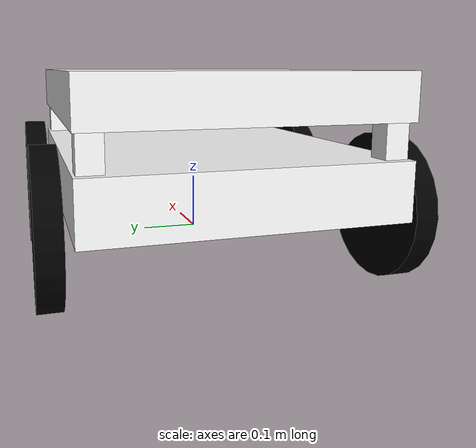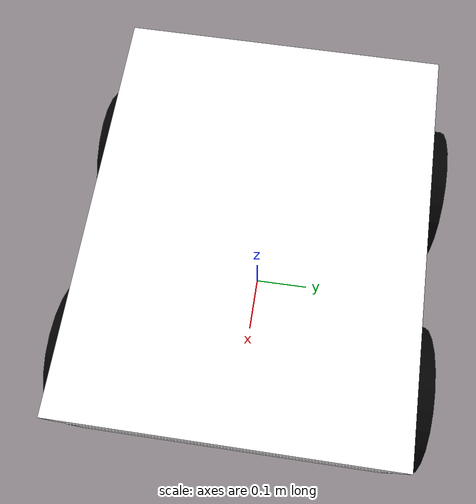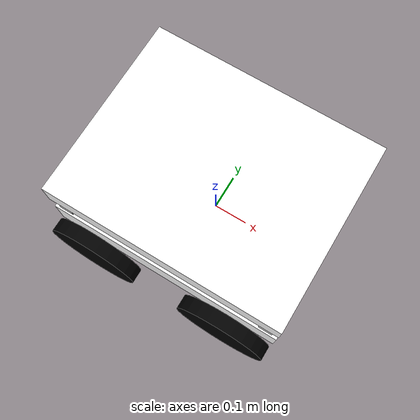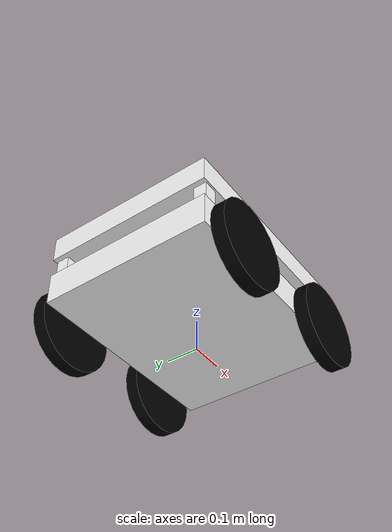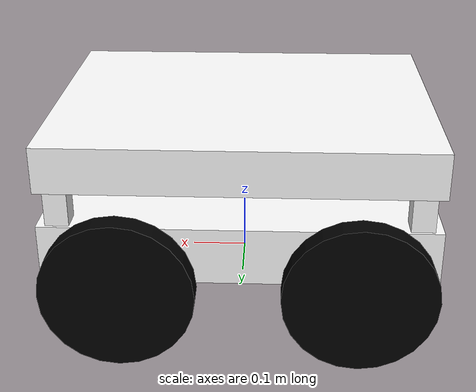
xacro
<?xml version="1.0" ?>
<robot name="jubox" xmlns:xacro="http://wiki.ros.org/xacro">

    <xacro:include filename="head.xacro"/>
<!--base_car-->
    <xacro:property name="base_mass" value="2" />
    <xacro:property name="base_length" value="0.67" />
    <xacro:property name="base_weigth" value="0.53" />
    <xacro:property name="base_heigth" value="0.10" />

    <link name="base_link">
        <visual>
            <origin xyz="0.0 0.0 0.12" rpy="0.0 0.0 0.0"/>
            <geometry>
                <box size="0.67 0.53 0.10"/>
            </geometry>
            <material name="white">
                <color rgba="1 1 1 1"/>
            </material>
        </visual>
    <collision>
        <geometry>
            <box size="0.67 0.53 0.10"/>
        </geometry>
        <origin xyz="0.0 0.0 0.0" rpy="0.0 0.0 0.0"/>
    </collision>
    <xacro:Box_inertial_matrix m="${base_mass}"  l="${base_length}" w="${base_weigth}" h="${base_heigth}" />
    </link>
    <gazebo reference="base_link">
        <material>Gazebo/White</material>
    </gazebo>

<!--wheel-->
    <xacro:property name="wheel_radius" value="0.13" />
    <xacro:property name="wheel_length" value="0.04" />
    <xacro:property name="wheel_mass" value="0.05" />

    <xacro:property name="PI" value="3.1415927" />

    <xacro:macro name="wheel_func" params="wheel_name flag1 flag2">

    <joint name="${wheel_name}_joint" type="continuous">
        <origin xyz="${0.20*flag2} ${0.298*flag1} 0.07" rpy="${PI/2} 0.0 0.0"/>
        <parent link="base_link"/>
        <child link="${wheel_name}_link"/>
        <axis xyz="0 0 1"/>
    </joint>

    <link name="${wheel_name}_link">
        <visual>
            <origin xyz="0.0 0.0 0.0" rpy="0.0 0.0 0.0"/>
            <geometry>
                <cylinder radius="${wheel_radius}" length="${wheel_length}"/>
            </geometry>
            <material name="black">
                <color rgba="0 0 0 1"/>
            </material>
        </visual>
    <collision>
        <geometry>
            <cylinder radius="${wheel_radius}" length="${wheel_length}"/>
        </geometry>
        <origin xyz="0.0 0.0 0.0" rpy="0.0 0.0 0.0"/>
    </collision>
    <xacro:cylinder_inertial_matrix m="${wheel_mass}" r="${wheel_radius}" h="${wheel_length}" />
    </link>
    <gazebo reference="${wheel_name}_link">
        <material>Gazebo/Black</material>
    </gazebo>

</xacro:macro>

    <xacro:wheel_func wheel_name="left_back" flag1="1" flag2="-1"/>
    <xacro:wheel_func wheel_name="right_back" flag1="-1" flag2="-1"/>
    <xacro:wheel_func wheel_name="left_front" flag1="1" flag2="1"/>
    <xacro:wheel_func wheel_name="right_front" flag1="-1" flag2="1"/>

<!--support-->

    <xacro:property name="support_l" value="0.04" />
    <xacro:property name="support_h" value="0.11" />
    <xacro:property name="support_w" value="0.04" />
    <xacro:property name="support_mass" value="0.02" />
    <xacro:property name="PI" value="3.1415927" />

<xacro:macro name="support_func" params="support_name flag1 flag2">

    <joint name="${support_name}_joint" type="fixed">
        <origin xyz="${0.3*flag1} ${0.24*flag2} 0.22" rpy="${PI/2} 0.0 0.0"/>
        <parent link="base_link"/>
        <child link="${support_name}_link"/>
    </joint>

    <link name="${support_name}_link">
        <visual>
            <origin xyz="0.0 0.0 0.0" rpy="0.0 0.0 0.0"/>
            <geometry>
                <box size="${support_l} ${support_h} ${support_w}"/>
            </geometry>
            <material name="white">
                <color rgba="1 1 1 0"/>
            </material>
        </visual>
    <collision>
        <geometry>
            <box size="${support_l} ${support_h} ${support_w}"/>
        </geometry>
        <origin xyz="0.0 0.0 0.0" rpy="0.0 0.0 0.0"/>
    </collision>
    <xacro:Box_inertial_matrix m="${support_mass}"  l="${support_l}" w="${support_w}" h="${support_h}" />
    </link>
    <gazebo reference="${support_name}_link">
        <material>Gazebo/White</material>
    </gazebo>

</xacro:macro>

    <xacro:support_func support_name="zhu1" flag1="1" flag2="-1"/>
    <xacro:support_func support_name="zhu2" flag1="1" flag2="1"/>
    <xacro:support_func support_name="zhu3" flag1="-1" flag2="1"/>
    <xacro:support_func support_name="zhu4" flag1="-1" flag2="-1"/>

<!--base2_link-->

    <xacro:property name="base2_mass" value="1" />
    <xacro:property name="base2_l" value="0.67" />
    <xacro:property name="base2_w" value="0.53" />
    <xacro:property name="base2_h" value="0.08" />

    <joint name="er_joint" type="fixed">
        <origin xyz="0 0 0.27" rpy="0 0.0 0.0"/>
        <parent link="base_link"/>
        <child link="er_link"/>
    </joint>

    <link name="er_link">
        <visual>
            <origin xyz="0.0 0.0 0.0" rpy="0.0 0.0 0.0"/>
            <geometry>
                 <box size="${base2_l} ${base2_w} ${base2_h}"/>
            </geometry>
            <material name="white">
                <color rgba="1 1 1 0"/>
            </material>
        </visual>
    <collision>
        <geometry>
            <box size="0.67 0.53 0.08"/>
        </geometry>
        <origin xyz="0.0 0.0 0.0" rpy="0.0 0.0 0.0"/>
    </collision>
    <xacro:Box_inertial_matrix m="${base2_mass}"  l="${base2_l}" w="${base2_w}" h="${base2_h}" />
    </link>
    <gazebo reference="er_link">
        <material>Gazebo/White</material>
    </gazebo>
</robot>

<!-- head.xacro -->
<robot name="base" xmlns:xacro="http://wiki.ros.org/xacro">

    <xacro:macro name="sphere_inertial_matrix" params="m r">
        <inertial>
            <mass value="${m}" />
            <inertia ixx="${2*m*r*r/5}" ixy="0" ixz="0"
                iyy="${2*m*r*r/5}" iyz="0"
                izz="${2*m*r*r/5}" />
        </inertial>
    </xacro:macro>

    <xacro:macro name="cylinder_inertial_matrix" params="m r h">
        <inertial>
            <mass value="${m}" />
            <inertia ixx="${m*(3*r*r+h*h)/12}" ixy = "0" ixz = "0"
                iyy="${m*(3*r*r+h*h)/12}" iyz = "0"
                izz="${m*r*r/2}" />
        </inertial>
    </xacro:macro>

    <xacro:macro name="Box_inertial_matrix" params="m l w h">
       <inertial>
               <mass value="${m}" />
               <inertia ixx="${m*(h*h + l*l)/12}" ixy = "0" ixz = "0"
                   iyy="${m*(w*w + l*l)/12}" iyz= "0"
                   izz="${m*(w*w + h*h)/12}" />
       </inertial>
   </xacro:macro>
</robot>
